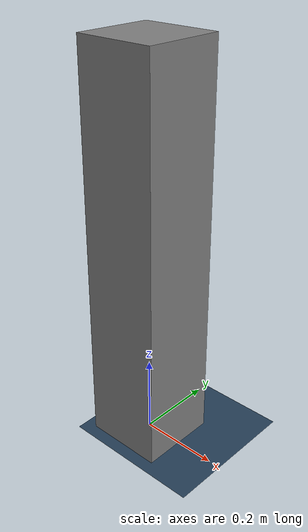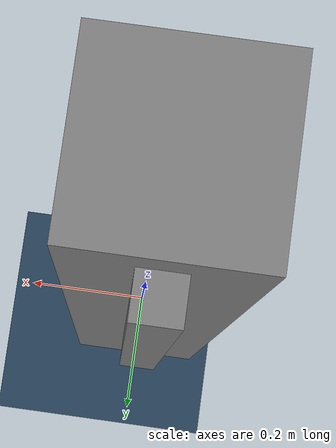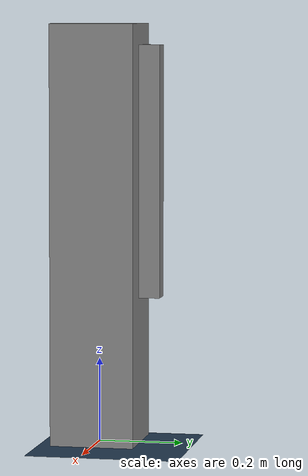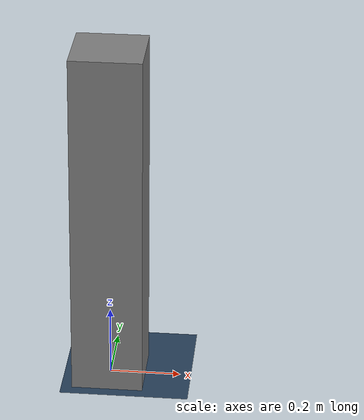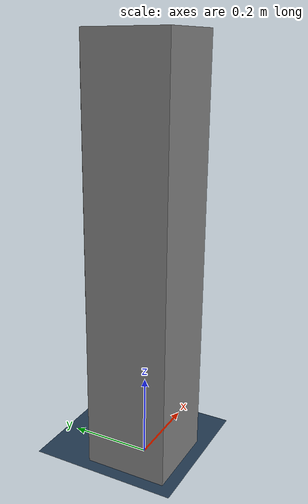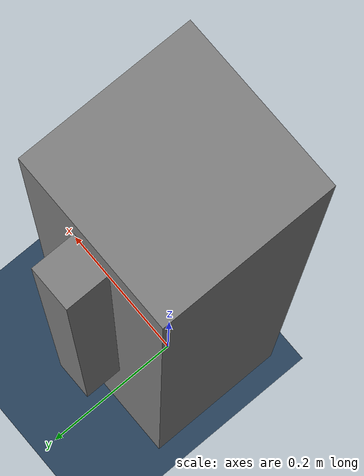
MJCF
<mujoco model="pendulum scene">

    <include file="pendulum.xml"/>

    <visual>
        <headlight diffuse="0.6 0.6 0.6" ambient="0.1 0.1 0.1" specular="0 0 0"/>
        <rgba haze="0.15 0.25 0.35 1"/>
        <global azimuth="-90" elevation="-20"/>
    </visual>

    <asset>
        <texture type="skybox" builtin="gradient" rgb1="0.3 0.5 0.7" rgb2="0 0 0" width="512" height="3072"/>
        <texture type="2d" name="groundplane" builtin="checker" mark="edge" rgb1="0.2 0.3 0.4" rgb2="0.1 0.2 0.3"
            markrgb="0.8 0.8 0.8" width="300" height="300"/>
        <material name="groundplane" texture="groundplane" texuniform="true" texrepeat="5 5" reflectance="0.2"/>
    </asset>

    <worldbody>
        <light pos="0 0 1.5" dir="0 0 -1" directional="true"/>
        <geom name="floor" size="0 0 0.05" type="plane" material="groundplane"/>
    </worldbody>

</mujoco>

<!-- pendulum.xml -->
<mujoco model="pendulum">
    <compiler angle="radian" autolimits="true"/>

    <option timestep="0.001" integrator="implicitfast">
        <flag energy="enable" frictionloss="disable" clampctrl="disable"/>
    </option>

    <statistic meansize="0.302076" extent="1.03923" center="0 0 0.5"/>
    <worldbody>
        <geom size="0.1 0.1 0.5" pos="0 0 0.5" type="box"/>
        <body name="link1" pos="0 0.125 0.95" quat="0 0 1 0">
            <inertial pos="0 0 0.3" mass="1" diaginertia="1 1 1"/>
            <joint name="joint1" pos="0 0 0" axis="0 1 0" range="-3.13985 3.14159"/>
            <geom size="0.025 0.025 0.3" pos="0 0 0.3" type="box"/>
        </body>
    </worldbody>

    <actuator>
        <general name="upper" joint="joint1"/>
    </actuator>
</mujoco>
